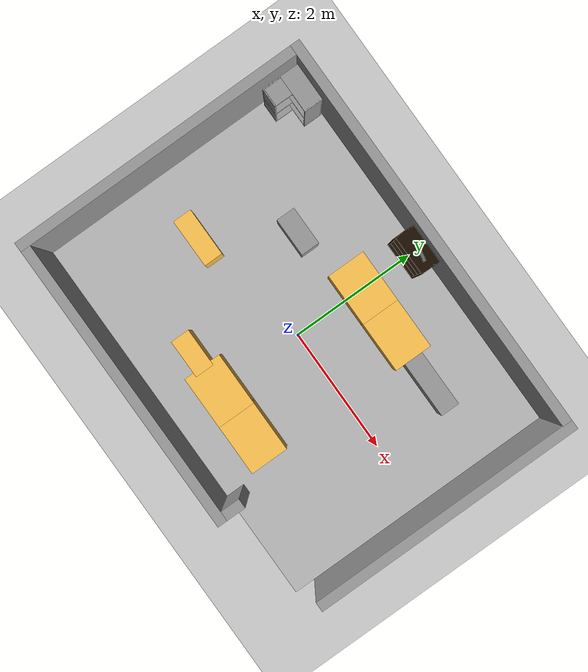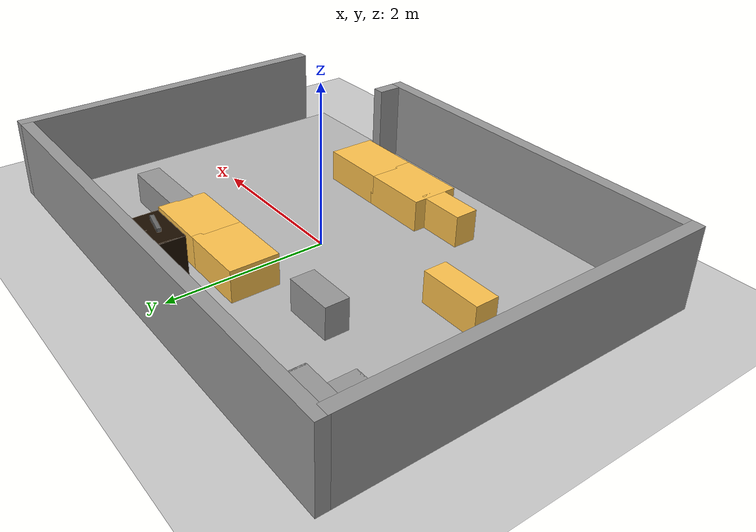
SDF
<sdf version="1.5">
 <world name="default">
  <scene><shadows>true</shadows></scene>
  <light name="sun" type="directional">
   <pose>0 0 10 0 -0 0</pose>
   <diffuse>0.8 0.8 0.8 1</diffuse>
   <specular>0.1 0.1 0.1 1</specular>
   <attenuation>
    <range>1000</range>
    <constant>0.9</constant>
    <linear>0.01</linear>
    <quadratic>0.001</quadratic>
   </attenuation>
   <direction>-0.5 0.5 -1</direction>
  </light>
  <physics type="ode">
   <max_step_size>0.001</max_step_size>
   <real_time_factor>1</real_time_factor>
   <real_time_update_rate>1000</real_time_update_rate>
   <gravity>0 0 -9.8</gravity>
  </physics>
  <include><uri>model://ground_plane</uri></include>
  <include><uri>model://Workshop</uri></include>
  <include><pose>-1.936710 -0.343286 0.013 0 0 -1.57</pose><uri>model://Box_15x30</uri></include>
  <include><name>box1</name><pose>0.0 1.141109 0.013 0 0 0</pose><uri>model://Box_33x15</uri></include>
  <include><name>box2</name><pose>0.8 1.141109 0.013 0 0 0</pose><uri>model://Box_33x15</uri></include>
  <include><pose>1.658951 1.141109 0.013 0 0 0</pose><uri>model://Box_36x15W</uri></include>
  <include><pose>0 1.986729 0.013002 0 0 0</pose><uri>model://6_Cube_StorageE</uri></include>
  <include><pose>-0.653226 -1.356719 0.013 0 0 0</pose><uri>model://Box_24x15M</uri></include>
  <include><pose>-1.184366 0.857670 0.013 0 0 0</pose><uri>model://Box_24x15W</uri></include>
  <include><name>box3</name><pose>0.0 -1.356719 0.013 0 0 0</pose><uri>model://Box_33x15</uri></include>
  <include><name>box4</name><pose>0.8 -1.356719 0.013 0 0 0</pose><uri>model://Box_33x15</uri></include>
  <include>
   <pose>-2.710050 1.858030 0.013 0 0 -1.574973</pose>
   <uri>model://Wall_Cabinet_Coin_24x30W</uri>
  </include>
  <include><pose>0.0443 1.991597 0.947936 0.194664 1.558386 0.000047</pose><uri>model://pole</uri></include>
 </world>
</sdf>
